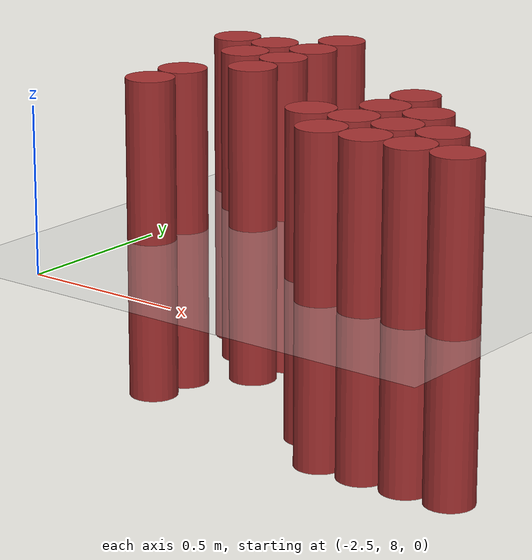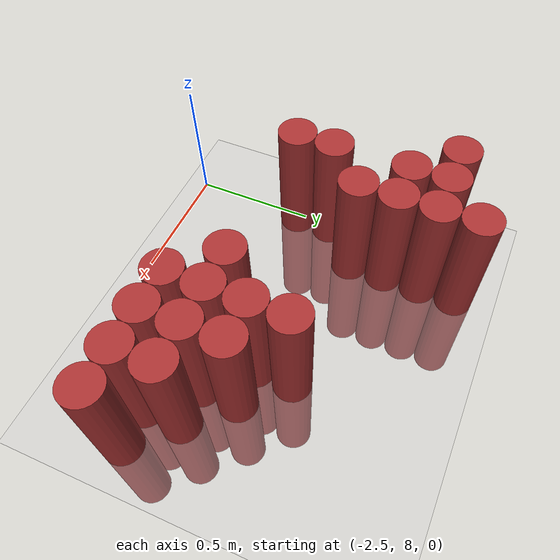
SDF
<sdf version="1.6">
 <world name="default">
  <model name="ground_plane">
   <static>1</static>
   <link name="link">
    <collision name="collision">
     <geometry><plane><normal>0 0 1</normal><size>100 100</size></plane></geometry>
     <surface><friction><ode><mu>100</mu><mu2>50</mu2></ode></friction></surface>
    </collision>
    <visual name="visual">
     <cast_shadows>0</cast_shadows>
     <geometry><plane><normal>0 0 1</normal><size>100 100</size></plane></geometry>
     <material>
      <script><uri>file://media/materials/scripts/gazebo.material</uri><name>Gazebo/Grey</name></script>
     </material>
    </visual>
   </link>
  </model>
  <model name="unit_cylinder_215">
   <static>1</static>
   <pose>-2.625000 9.075000 0.000000 0.000000 0.000000 0.000000</pose>
   <link name="link">
    <inertial>
     <mass>1</mass>
     <inertia><ixx>0.145833</ixx><ixy>0</ixy><ixz>0</ixz><iyy>0.145833</iyy><iyz>0</iyz><izz>0.125</izz></inertia>
    </inertial>
    <collision name="collision">
     <geometry><cylinder><radius>0.075000</radius><length>1</length></cylinder></geometry>
    </collision>
    <visual name="visual">
     <geometry><cylinder><radius>0.075000</radius><length>1</length></cylinder></geometry>
     <material>
      <ambient>0.648000 0.192000 0.192000 1</ambient>
      <diffuse>0.648000 0.192000 0.192000 1</diffuse>
     </material>
     <material>
      <script><name>Gazebo/Grey</name><uri>file://media/materials/scripts/gazebo.material</uri></script>
     </material>
    </visual>
    <sensor name="sensor_contact" type="contact"><contact><collision>collision</collision></contact></sensor>
   </link>
   <plugin filename="gz-sim-touchplugin-system" name="gz::sim::systems::TouchPlugin">
    <target>robot</target>
    <namespace>robot</namespace>
    <time>0.001</time>
    <enabled>true</enabled>
   </plugin>
  </model>
  <model name="unit_cylinder_219">
   <static>1</static>
   <pose>-2.475000 8.475000 0.000000 0.000000 0.000000 0.000000</pose>
   <link name="link">
    <inertial>
     <mass>1</mass>
     <inertia><ixx>0.145833</ixx><ixy>0</ixy><ixz>0</ixz><iyy>0.145833</iyy><iyz>0</iyz><izz>0.125</izz></inertia>
    </inertial>
    <collision name="collision">
     <geometry><cylinder><radius>0.075000</radius><length>1</length></cylinder></geometry>
    </collision>
    <visual name="visual">
     <geometry><cylinder><radius>0.075000</radius><length>1</length></cylinder></geometry>
     <material>
      <ambient>0.648000 0.192000 0.192000 1</ambient>
      <diffuse>0.648000 0.192000 0.192000 1</diffuse>
     </material>
     <material>
      <script><name>Gazebo/Grey</name><uri>file://media/materials/scripts/gazebo.material</uri></script>
     </material>
    </visual>
    <sensor name="sensor_contact" type="contact"><contact><collision>collision</collision></contact></sensor>
   </link>
   <plugin filename="gz-sim-touchplugin-system" name="gz::sim::systems::TouchPlugin">
    <target>robot</target>
    <namespace>robot</namespace>
    <time>0.001</time>
    <enabled>true</enabled>
   </plugin>
  </model>
  <model name="unit_cylinder_220">
   <static>1</static>
   <pose>-2.475000 8.625000 0.000000 0.000000 0.000000 0.000000</pose>
   <link name="link">
    <inertial>
     <mass>1</mass>
     <inertia><ixx>0.145833</ixx><ixy>0</ixy><ixz>0</ixz><iyy>0.145833</iyy><iyz>0</iyz><izz>0.125</izz></inertia>
    </inertial>
    <collision name="collision">
     <geometry><cylinder><radius>0.075000</radius><length>1</length></cylinder></geometry>
    </collision>
    <visual name="visual">
     <geometry><cylinder><radius>0.075000</radius><length>1</length></cylinder></geometry>
     <material>
      <ambient>0.648000 0.192000 0.192000 1</ambient>
      <diffuse>0.648000 0.192000 0.192000 1</diffuse>
     </material>
     <material>
      <script><name>Gazebo/Grey</name><uri>file://media/materials/scripts/gazebo.material</uri></script>
     </material>
    </visual>
    <sensor name="sensor_contact" type="contact"><contact><collision>collision</collision></contact></sensor>
   </link>
   <plugin filename="gz-sim-touchplugin-system" name="gz::sim::systems::TouchPlugin">
    <target>robot</target>
    <namespace>robot</namespace>
    <time>0.001</time>
    <enabled>true</enabled>
   </plugin>
  </model>
  <model name="unit_cylinder_221">
   <static>1</static>
   <pose>-2.475000 8.925000 0.000000 0.000000 0.000000 0.000000</pose>
   <link name="link">
    <inertial>
     <mass>1</mass>
     <inertia><ixx>0.145833</ixx><ixy>0</ixy><ixz>0</ixz><iyy>0.145833</iyy><iyz>0</iyz><izz>0.125</izz></inertia>
    </inertial>
    <collision name="collision">
     <geometry><cylinder><radius>0.075000</radius><length>1</length></cylinder></geometry>
    </collision>
    <visual name="visual">
     <geometry><cylinder><radius>0.075000</radius><length>1</length></cylinder></geometry>
     <material>
      <ambient>0.648000 0.192000 0.192000 1</ambient>
      <diffuse>0.648000 0.192000 0.192000 1</diffuse>
     </material>
     <material>
      <script><name>Gazebo/Grey</name><uri>file://media/materials/scripts/gazebo.material</uri></script>
     </material>
    </visual>
    <sensor name="sensor_contact" type="contact"><contact><collision>collision</collision></contact></sensor>
   </link>
   <plugin filename="gz-sim-touchplugin-system" name="gz::sim::systems::TouchPlugin">
    <target>robot</target>
    <namespace>robot</namespace>
    <time>0.001</time>
    <enabled>true</enabled>
   </plugin>
  </model>
  <model name="unit_cylinder_222">
   <static>1</static>
   <pose>-2.475000 9.075000 0.000000 0.000000 0.000000 0.000000</pose>
   <link name="link">
    <inertial>
     <mass>1</mass>
     <inertia><ixx>0.145833</ixx><ixy>0</ixy><ixz>0</ixz><iyy>0.145833</iyy><iyz>0</iyz><izz>0.125</izz></inertia>
    </inertial>
    <collision name="collision">
     <geometry><cylinder><radius>0.075000</radius><length>1</length></cylinder></geometry>
    </collision>
    <visual name="visual">
     <geometry><cylinder><radius>0.075000</radius><length>1</length></cylinder></geometry>
     <material>
      <ambient>0.648000 0.192000 0.192000 1</ambient>
      <diffuse>0.648000 0.192000 0.192000 1</diffuse>
     </material>
     <material>
      <script><name>Gazebo/Grey</name><uri>file://media/materials/scripts/gazebo.material</uri></script>
     </material>
    </visual>
    <sensor name="sensor_contact" type="contact"><contact><collision>collision</collision></contact></sensor>
   </link>
   <plugin filename="gz-sim-touchplugin-system" name="gz::sim::systems::TouchPlugin">
    <target>robot</target>
    <namespace>robot</namespace>
    <time>0.001</time>
    <enabled>true</enabled>
   </plugin>
  </model>
  <model name="unit_cylinder_230">
   <static>1</static>
   <pose>-2.325000 8.775000 0.000000 0.000000 0.000000 0.000000</pose>
   <link name="link">
    <inertial>
     <mass>1</mass>
     <inertia><ixx>0.145833</ixx><ixy>0</ixy><ixz>0</ixz><iyy>0.145833</iyy><iyz>0</iyz><izz>0.125</izz></inertia>
    </inertial>
    <collision name="collision">
     <geometry><cylinder><radius>0.075000</radius><length>1</length></cylinder></geometry>
    </collision>
    <visual name="visual">
     <geometry><cylinder><radius>0.075000</radius><length>1</length></cylinder></geometry>
     <material>
      <ambient>0.648000 0.192000 0.192000 1</ambient>
      <diffuse>0.648000 0.192000 0.192000 1</diffuse>
     </material>
     <material>
      <script><name>Gazebo/Grey</name><uri>file://media/materials/scripts/gazebo.material</uri></script>
     </material>
    </visual>
    <sensor name="sensor_contact" type="contact"><contact><collision>collision</collision></contact></sensor>
   </link>
   <plugin filename="gz-sim-touchplugin-system" name="gz::sim::systems::TouchPlugin">
    <target>robot</target>
    <namespace>robot</namespace>
    <time>0.001</time>
    <enabled>true</enabled>
   </plugin>
  </model>
  <model name="unit_cylinder_231">
   <static>1</static>
   <pose>-2.325000 8.925000 0.000000 0.000000 0.000000 0.000000</pose>
   <link name="link">
    <inertial>
     <mass>1</mass>
     <inertia><ixx>0.145833</ixx><ixy>0</ixy><ixz>0</ixz><iyy>0.145833</iyy><iyz>0</iyz><izz>0.125</izz></inertia>
    </inertial>
    <collision name="collision">
     <geometry><cylinder><radius>0.075000</radius><length>1</length></cylinder></geometry>
    </collision>
    <visual name="visual">
     <geometry><cylinder><radius>0.075000</radius><length>1</length></cylinder></geometry>
     <material>
      <ambient>0.648000 0.192000 0.192000 1</ambient>
      <diffuse>0.648000 0.192000 0.192000 1</diffuse>
     </material>
     <material>
      <script><name>Gazebo/Grey</name><uri>file://media/materials/scripts/gazebo.material</uri></script>
     </material>
    </visual>
    <sensor name="sensor_contact" type="contact"><contact><collision>collision</collision></contact></sensor>
   </link>
   <plugin filename="gz-sim-touchplugin-system" name="gz::sim::systems::TouchPlugin">
    <target>robot</target>
    <namespace>robot</namespace>
    <time>0.001</time>
    <enabled>true</enabled>
   </plugin>
  </model>
  <model name="unit_cylinder_232">
   <static>1</static>
   <pose>-2.325000 9.075000 0.000000 0.000000 0.000000 0.000000</pose>
   <link name="link">
    <inertial>
     <mass>1</mass>
     <inertia><ixx>0.145833</ixx><ixy>0</ixy><ixz>0</ixz><iyy>0.145833</iyy><iyz>0</iyz><izz>0.125</izz></inertia>
    </inertial>
    <collision name="collision">
     <geometry><cylinder><radius>0.075000</radius><length>1</length></cylinder></geometry>
    </collision>
    <visual name="visual">
     <geometry><cylinder><radius>0.075000</radius><length>1</length></cylinder></geometry>
     <material>
      <ambient>0.648000 0.192000 0.192000 1</ambient>
      <diffuse>0.648000 0.192000 0.192000 1</diffuse>
     </material>
     <material>
      <script><name>Gazebo/Grey</name><uri>file://media/materials/scripts/gazebo.material</uri></script>
     </material>
    </visual>
    <sensor name="sensor_contact" type="contact"><contact><collision>collision</collision></contact></sensor>
   </link>
   <plugin filename="gz-sim-touchplugin-system" name="gz::sim::systems::TouchPlugin">
    <target>robot</target>
    <namespace>robot</namespace>
    <time>0.001</time>
    <enabled>true</enabled>
   </plugin>
  </model>
  <model name="unit_cylinder_233">
   <static>1</static>
   <pose>-2.325000 9.225000 0.000000 0.000000 0.000000 0.000000</pose>
   <link name="link">
    <inertial>
     <mass>1</mass>
     <inertia><ixx>0.145833</ixx><ixy>0</ixy><ixz>0</ixz><iyy>0.145833</iyy><iyz>0</iyz><izz>0.125</izz></inertia>
    </inertial>
    <collision name="collision">
     <geometry><cylinder><radius>0.075000</radius><length>1</length></cylinder></geometry>
    </collision>
    <visual name="visual">
     <geometry><cylinder><radius>0.075000</radius><length>1</length></cylinder></geometry>
     <material>
      <ambient>0.648000 0.192000 0.192000 1</ambient>
      <diffuse>0.648000 0.192000 0.192000 1</diffuse>
     </material>
     <material>
      <script><name>Gazebo/Grey</name><uri>file://media/materials/scripts/gazebo.material</uri></script>
     </material>
    </visual>
    <sensor name="sensor_contact" type="contact"><contact><collision>collision</collision></contact></sensor>
   </link>
   <plugin filename="gz-sim-touchplugin-system" name="gz::sim::systems::TouchPlugin">
    <target>robot</target>
    <namespace>robot</namespace>
    <time>0.001</time>
    <enabled>true</enabled>
   </plugin>
  </model>
  <model name="unit_cylinder_239">
   <static>1</static>
   <pose>-1.875000 8.475000 0.000000 0.000000 0.000000 0.000000</pose>
   <link name="link">
    <inertial>
     <mass>1</mass>
     <inertia><ixx>0.145833</ixx><ixy>0</ixy><ixz>0</ixz><iyy>0.145833</iyy><iyz>0</iyz><izz>0.125</izz></inertia>
    </inertial>
    <collision name="collision">
     <geometry><cylinder><radius>0.075000</radius><length>1</length></cylinder></geometry>
    </collision>
    <visual name="visual">
     <geometry><cylinder><radius>0.075000</radius><length>1</length></cylinder></geometry>
     <material>
      <ambient>0.648000 0.192000 0.192000 1</ambient>
      <diffuse>0.648000 0.192000 0.192000 1</diffuse>
     </material>
     <material>
      <script><name>Gazebo/Grey</name><uri>file://media/materials/scripts/gazebo.material</uri></script>
     </material>
    </visual>
    <sensor name="sensor_contact" type="contact"><contact><collision>collision</collision></contact></sensor>
   </link>
   <plugin filename="gz-sim-touchplugin-system" name="gz::sim::systems::TouchPlugin">
    <target>robot</target>
    <namespace>robot</namespace>
    <time>0.001</time>
    <enabled>true</enabled>
   </plugin>
  </model>
  <model name="unit_cylinder_242">
   <static>1</static>
   <pose>-1.725000 8.325000 0.000000 0.000000 0.000000 0.000000</pose>
   <link name="link">
    <inertial>
     <mass>1</mass>
     <inertia><ixx>0.145833</ixx><ixy>0</ixy><ixz>0</ixz><iyy>0.145833</iyy><iyz>0</iyz><izz>0.125</izz></inertia>
    </inertial>
    <collision name="collision">
     <geometry><cylinder><radius>0.075000</radius><length>1</length></cylinder></geometry>
    </collision>
    <visual name="visual">
     <geometry><cylinder><radius>0.075000</radius><length>1</length></cylinder></geometry>
     <material>
      <ambient>0.648000 0.192000 0.192000 1</ambient>
      <diffuse>0.648000 0.192000 0.192000 1</diffuse>
     </material>
     <material>
      <script><name>Gazebo/Grey</name><uri>file://media/materials/scripts/gazebo.material</uri></script>
     </material>
    </visual>
    <sensor name="sensor_contact" type="contact"><contact><collision>collision</collision></contact></sensor>
   </link>
   <plugin filename="gz-sim-touchplugin-system" name="gz::sim::systems::TouchPlugin">
    <target>robot</target>
    <namespace>robot</namespace>
    <time>0.001</time>
    <enabled>true</enabled>
   </plugin>
  </model>
  <model name="unit_cylinder_243">
   <static>1</static>
   <pose>-1.725000 8.475000 0.000000 0.000000 0.000000 0.000000</pose>
   <link name="link">
    <inertial>
     <mass>1</mass>
     <inertia><ixx>0.145833</ixx><ixy>0</ixy><ixz>0</ixz><iyy>0.145833</iyy><iyz>0</iyz><izz>0.125</izz></inertia>
    </inertial>
    <collision name="collision">
     <geometry><cylinder><radius>0.075000</radius><length>1</length></cylinder></geometry>
    </collision>
    <visual name="visual">
     <geometry><cylinder><radius>0.075000</radius><length>1</length></cylinder></geometry>
     <material>
      <ambient>0.648000 0.192000 0.192000 1</ambient>
      <diffuse>0.648000 0.192000 0.192000 1</diffuse>
     </material>
     <material>
      <script><name>Gazebo/Grey</name><uri>file://media/materials/scripts/gazebo.material</uri></script>
     </material>
    </visual>
    <sensor name="sensor_contact" type="contact"><contact><collision>collision</collision></contact></sensor>
   </link>
   <plugin filename="gz-sim-touchplugin-system" name="gz::sim::systems::TouchPlugin">
    <target>robot</target>
    <namespace>robot</namespace>
    <time>0.001</time>
    <enabled>true</enabled>
   </plugin>
  </model>
  <model name="unit_cylinder_244">
   <static>1</static>
   <pose>-1.725000 8.625000 0.000000 0.000000 0.000000 0.000000</pose>
   <link name="link">
    <inertial>
     <mass>1</mass>
     <inertia><ixx>0.145833</ixx><ixy>0</ixy><ixz>0</ixz><iyy>0.145833</iyy><iyz>0</iyz><izz>0.125</izz></inertia>
    </inertial>
    <collision name="collision">
     <geometry><cylinder><radius>0.075000</radius><length>1</length></cylinder></geometry>
    </collision>
    <visual name="visual">
     <geometry><cylinder><radius>0.075000</radius><length>1</length></cylinder></geometry>
     <material>
      <ambient>0.648000 0.192000 0.192000 1</ambient>
      <diffuse>0.648000 0.192000 0.192000 1</diffuse>
     </material>
     <material>
      <script><name>Gazebo/Grey</name><uri>file://media/materials/scripts/gazebo.material</uri></script>
     </material>
    </visual>
    <sensor name="sensor_contact" type="contact"><contact><collision>collision</collision></contact></sensor>
   </link>
   <plugin filename="gz-sim-touchplugin-system" name="gz::sim::systems::TouchPlugin">
    <target>robot</target>
    <namespace>robot</namespace>
    <time>0.001</time>
    <enabled>true</enabled>
   </plugin>
  </model>
  <model name="unit_cylinder_245">
   <static>1</static>
   <pose>-1.725000 8.775000 0.000000 0.000000 0.000000 0.000000</pose>
   <link name="link">
    <inertial>
     <mass>1</mass>
     <inertia><ixx>0.145833</ixx><ixy>0</ixy><ixz>0</ixz><iyy>0.145833</iyy><iyz>0</iyz><izz>0.125</izz></inertia>
    </inertial>
    <collision name="collision">
     <geometry><cylinder><radius>0.075000</radius><length>1</length></cylinder></geometry>
    </collision>
    <visual name="visual">
     <geometry><cylinder><radius>0.075000</radius><length>1</length></cylinder></geometry>
     <material>
      <ambient>0.648000 0.192000 0.192000 1</ambient>
      <diffuse>0.648000 0.192000 0.192000 1</diffuse>
     </material>
     <material>
      <script><name>Gazebo/Grey</name><uri>file://media/materials/scripts/gazebo.material</uri></script>
     </material>
    </visual>
    <sensor name="sensor_contact" type="contact"><contact><collision>collision</collision></contact></sensor>
   </link>
   <plugin filename="gz-sim-touchplugin-system" name="gz::sim::systems::TouchPlugin">
    <target>robot</target>
    <namespace>robot</namespace>
    <time>0.001</time>
    <enabled>true</enabled>
   </plugin>
  </model>
  <model name="unit_cylinder_248">
   <static>1</static>
   <pose>-1.575000 8.325000 0.000000 0.000000 0.000000 0.000000</pose>
   <link name="link">
    <inertial>
     <mass>1</mass>
     <inertia><ixx>0.145833</ixx><ixy>0</ixy><ixz>0</ixz><iyy>0.145833</iyy><iyz>0</iyz><izz>0.125</izz></inertia>
    </inertial>
    <collision name="collision">
     <geometry><cylinder><radius>0.075000</radius><length>1</length></cylinder></geometry>
    </collision>
    <visual name="visual">
     <geometry><cylinder><radius>0.075000</radius><length>1</length></cylinder></geometry>
     <material>
      <ambient>0.648000 0.192000 0.192000 1</ambient>
      <diffuse>0.648000 0.192000 0.192000 1</diffuse>
     </material>
     <material>
      <script><name>Gazebo/Grey</name><uri>file://media/materials/scripts/gazebo.material</uri></script>
     </material>
    </visual>
    <sensor name="sensor_contact" type="contact"><contact><collision>collision</collision></contact></sensor>
   </link>
   <plugin filename="gz-sim-touchplugin-system" name="gz::sim::systems::TouchPlugin">
    <target>robot</target>
    <namespace>robot</namespace>
    <time>0.001</time>
    <enabled>true</enabled>
   </plugin>
  </model>
  <model name="unit_cylinder_249">
   <static>1</static>
   <pose>-1.575000 8.475000 0.000000 0.000000 0.000000 0.000000</pose>
   <link name="link">
    <inertial>
     <mass>1</mass>
     <inertia><ixx>0.145833</ixx><ixy>0</ixy><ixz>0</ixz><iyy>0.145833</iyy><iyz>0</iyz><izz>0.125</izz></inertia>
    </inertial>
    <collision name="collision">
     <geometry><cylinder><radius>0.075000</radius><length>1</length></cylinder></geometry>
    </collision>
    <visual name="visual">
     <geometry><cylinder><radius>0.075000</radius><length>1</length></cylinder></geometry>
     <material>
      <ambient>0.648000 0.192000 0.192000 1</ambient>
      <diffuse>0.648000 0.192000 0.192000 1</diffuse>
     </material>
     <material>
      <script><name>Gazebo/Grey</name><uri>file://media/materials/scripts/gazebo.material</uri></script>
     </material>
    </visual>
    <sensor name="sensor_contact" type="contact"><contact><collision>collision</collision></contact></sensor>
   </link>
   <plugin filename="gz-sim-touchplugin-system" name="gz::sim::systems::TouchPlugin">
    <target>robot</target>
    <namespace>robot</namespace>
    <time>0.001</time>
    <enabled>true</enabled>
   </plugin>
  </model>
  <model name="unit_cylinder_250">
   <static>1</static>
   <pose>-1.575000 8.625000 0.000000 0.000000 0.000000 0.000000</pose>
   <link name="link">
    <inertial>
     <mass>1</mass>
     <inertia><ixx>0.145833</ixx><ixy>0</ixy><ixz>0</ixz><iyy>0.145833</iyy><iyz>0</iyz><izz>0.125</izz></inertia>
    </inertial>
    <collision name="collision">
     <geometry><cylinder><radius>0.075000</radius><length>1</length></cylinder></geometry>
    </collision>
    <visual name="visual">
     <geometry><cylinder><radius>0.075000</radius><length>1</length></cylinder></geometry>
     <material>
      <ambient>0.648000 0.192000 0.192000 1</ambient>
      <diffuse>0.648000 0.192000 0.192000 1</diffuse>
     </material>
     <material>
      <script><name>Gazebo/Grey</name><uri>file://media/materials/scripts/gazebo.material</uri></script>
     </material>
    </visual>
    <sensor name="sensor_contact" type="contact"><contact><collision>collision</collision></contact></sensor>
   </link>
   <plugin filename="gz-sim-touchplugin-system" name="gz::sim::systems::TouchPlugin">
    <target>robot</target>
    <namespace>robot</namespace>
    <time>0.001</time>
    <enabled>true</enabled>
   </plugin>
  </model>
  <model name="unit_cylinder_255">
   <static>1</static>
   <pose>-1.425000 8.325000 0.000000 0.000000 0.000000 0.000000</pose>
   <link name="link">
    <inertial>
     <mass>1</mass>
     <inertia><ixx>0.145833</ixx><ixy>0</ixy><ixz>0</ixz><iyy>0.145833</iyy><iyz>0</iyz><izz>0.125</izz></inertia>
    </inertial>
    <collision name="collision">
     <geometry><cylinder><radius>0.075000</radius><length>1</length></cylinder></geometry>
    </collision>
    <visual name="visual">
     <geometry><cylinder><radius>0.075000</radius><length>1</length></cylinder></geometry>
     <material>
      <ambient>0.648000 0.192000 0.192000 1</ambient>
      <diffuse>0.648000 0.192000 0.192000 1</diffuse>
     </material>
     <material>
      <script><name>Gazebo/Grey</name><uri>file://media/materials/scripts/gazebo.material</uri></script>
     </material>
    </visual>
    <sensor name="sensor_contact" type="contact"><contact><collision>collision</collision></contact></sensor>
   </link>
   <plugin filename="gz-sim-touchplugin-system" name="gz::sim::systems::TouchPlugin">
    <target>robot</target>
    <namespace>robot</namespace>
    <time>0.001</time>
    <enabled>true</enabled>
   </plugin>
  </model>
  <model name="unit_cylinder_256">
   <static>1</static>
   <pose>-1.425000 8.475000 0.000000 0.000000 0.000000 0.000000</pose>
   <link name="link">
    <inertial>
     <mass>1</mass>
     <inertia><ixx>0.145833</ixx><ixy>0</ixy><ixz>0</ixz><iyy>0.145833</iyy><iyz>0</iyz><izz>0.125</izz></inertia>
    </inertial>
    <collision name="collision">
     <geometry><cylinder><radius>0.075000</radius><length>1</length></cylinder></geometry>
    </collision>
    <visual name="visual">
     <geometry><cylinder><radius>0.075000</radius><length>1</length></cylinder></geometry>
     <material>
      <ambient>0.648000 0.192000 0.192000 1</ambient>
      <diffuse>0.648000 0.192000 0.192000 1</diffuse>
     </material>
     <material>
      <script><name>Gazebo/Grey</name><uri>file://media/materials/scripts/gazebo.material</uri></script>
     </material>
    </visual>
    <sensor name="sensor_contact" type="contact"><contact><collision>collision</collision></contact></sensor>
   </link>
   <plugin filename="gz-sim-touchplugin-system" name="gz::sim::systems::TouchPlugin">
    <target>robot</target>
    <namespace>robot</namespace>
    <time>0.001</time>
    <enabled>true</enabled>
   </plugin>
  </model>
  <model name="unit_cylinder_259">
   <static>1</static>
   <pose>-1.275000 8.325000 0.000000 0.000000 0.000000 0.000000</pose>
   <link name="link">
    <inertial>
     <mass>1</mass>
     <inertia><ixx>0.145833</ixx><ixy>0</ixy><ixz>0</ixz><iyy>0.145833</iyy><iyz>0</iyz><izz>0.125</izz></inertia>
    </inertial>
    <collision name="collision">
     <geometry><cylinder><radius>0.075000</radius><length>1</length></cylinder></geometry>
    </collision>
    <visual name="visual">
     <geometry><cylinder><radius>0.075000</radius><length>1</length></cylinder></geometry>
     <material>
      <ambient>0.648000 0.192000 0.192000 1</ambient>
      <diffuse>0.648000 0.192000 0.192000 1</diffuse>
     </material>
     <material>
      <script><name>Gazebo/Grey</name><uri>file://media/materials/scripts/gazebo.material</uri></script>
     </material>
    </visual>
    <sensor name="sensor_contact" type="contact"><contact><collision>collision</collision></contact></sensor>
   </link>
   <plugin filename="gz-sim-touchplugin-system" name="gz::sim::systems::TouchPlugin">
    <target>robot</target>
    <namespace>robot</namespace>
    <time>0.001</time>
    <enabled>true</enabled>
   </plugin>
  </model>
 </world>
</sdf>
